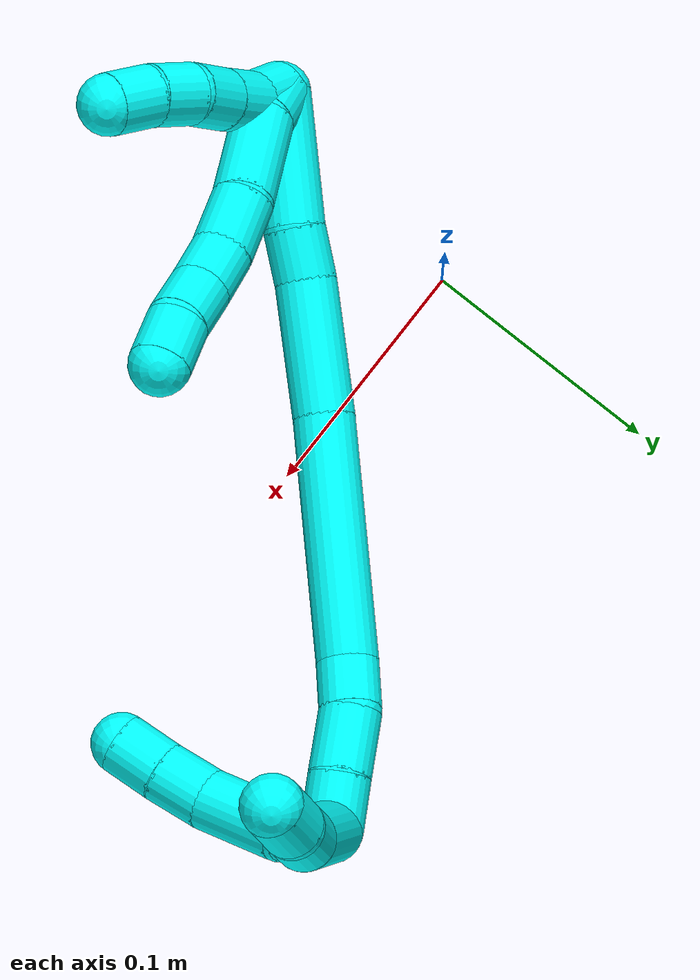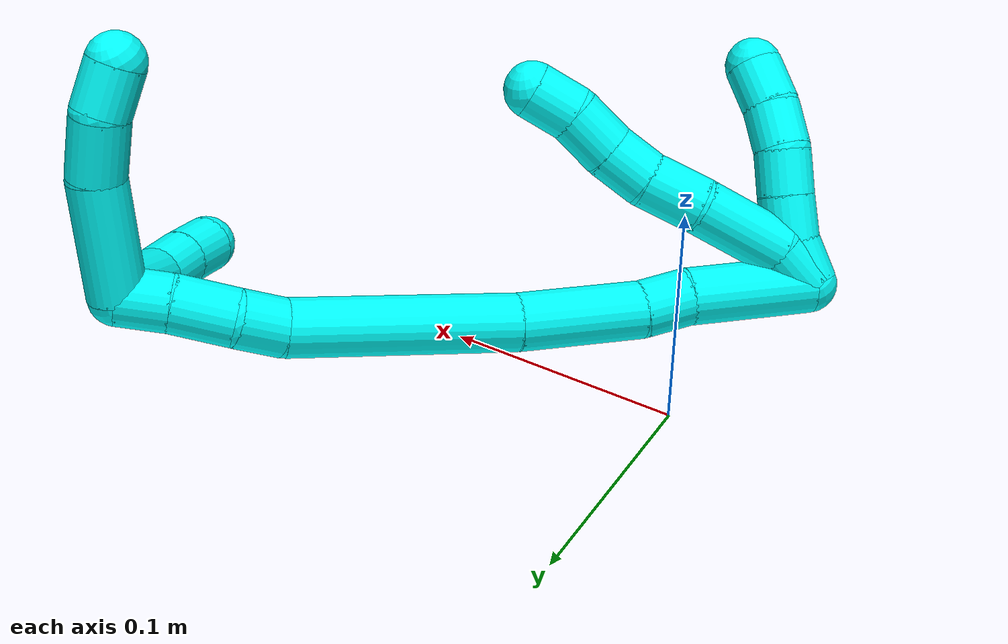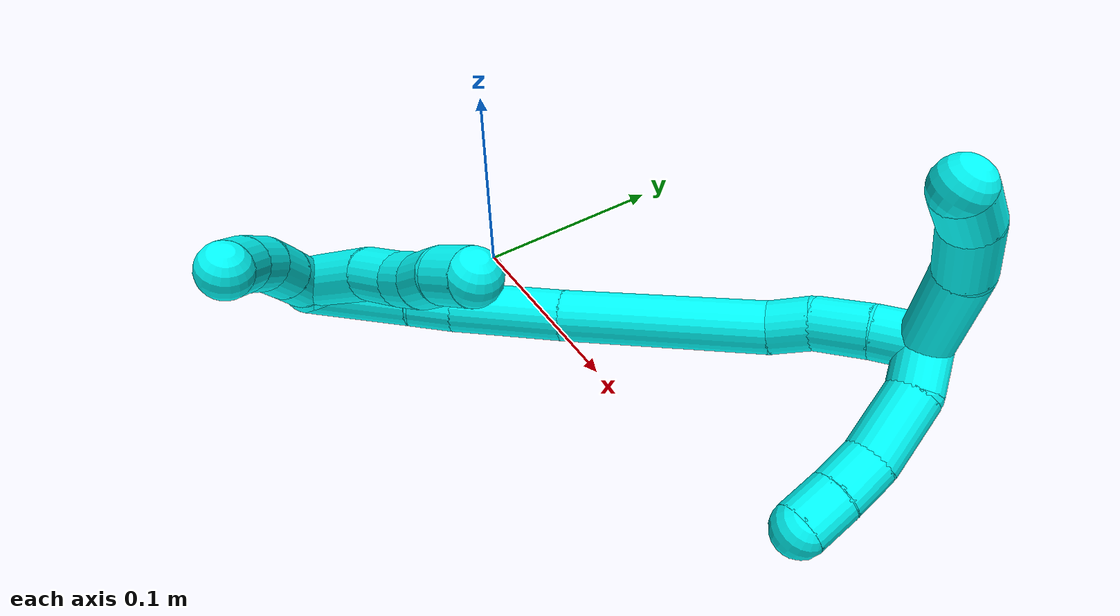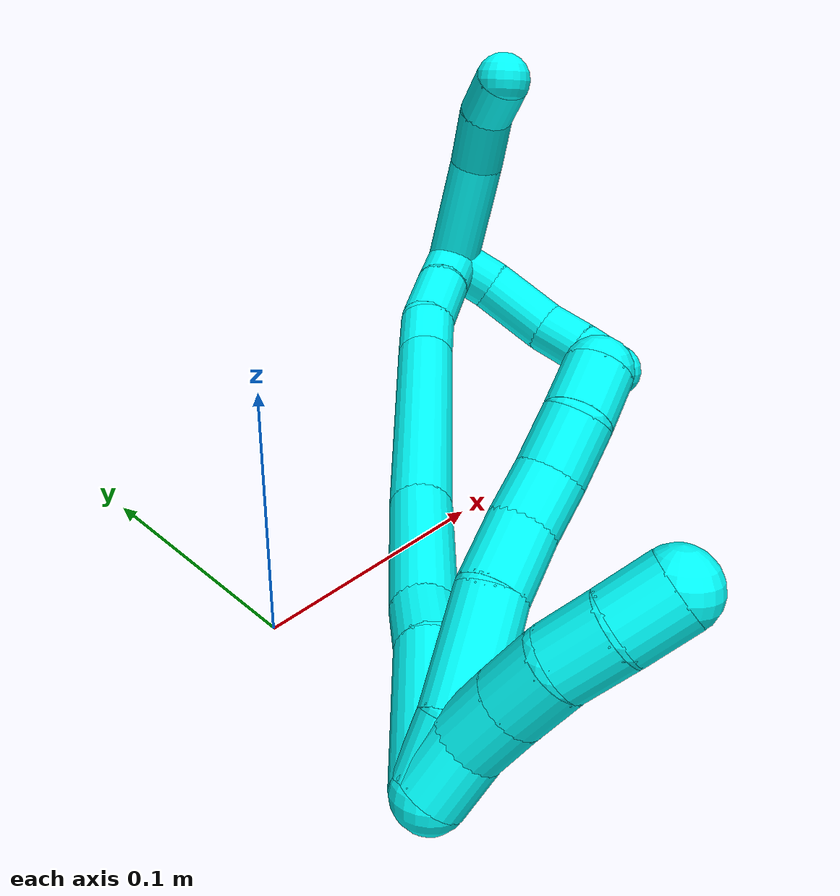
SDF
<sdf version="1.7">
 <world name="default">
  <model name="3">
   <static>0</static>
   <link name="3">
    <collision name="collision-cylinder-e_1_2_8">
     <pose>0.00506 0.000925 0.009393 -0.098132 0.492103 -0.024663</pose>
     <geometry><cylinder><radius>0.0125</radius><length>0.021418</length></cylinder></geometry>
     <surface>
      <friction><ode><mu>1.16</mu><mu2>1.16</mu2><slip1>0</slip1><slip2>0</slip2></ode></friction>
      <contact><ode><kp>1e+06</kp><kd>1</kd><max_vel>0</max_vel><min_depth>0.001</min_depth></ode></contact>
     </surface>
    </collision>
    <visual name="visual-cylinder-e_1_2_8">
     <pose>0.00506 0.000925 0.009393 -0.098132 0.492103 -0.024663</pose>
     <geometry><cylinder><radius>0.0125</radius><length>0.021418</length></cylinder></geometry>
     <material><ambient>0.003922 1 0.996078 1</ambient></material>
    </visual>
    <collision name="collision-cylinder-e_2_8_9">
     <pose>0.021676 0.009485 0.033719 -0.472643 0.603338 -0.149591</pose>
     <geometry><cylinder><radius>0.0125</radius><length>0.040737</length></cylinder></geometry>
     <surface>
      <friction><ode><mu>1.16</mu><mu2>1.16</mu2><slip1>0</slip1><slip2>0</slip2></ode></friction>
      <contact><ode><kp>1e+06</kp><kd>1</kd><max_vel>0</max_vel><min_depth>0.001</min_depth></ode></contact>
     </surface>
    </collision>
    <visual name="visual-cylinder-e_2_8_9">
     <pose>0.021676 0.009485 0.033719 -0.472643 0.603338 -0.149591</pose>
     <geometry><cylinder><radius>0.0125</radius><length>0.040737</length></cylinder></geometry>
     <material><ambient>0.003922 1 0.996078 1</ambient></material>
    </visual>
    <collision name="collision-cylinder-e_3_9_10">
     <pose>0.042158 0.021213 0.056649 -0.473062 0.782104 -0.198107</pose>
     <geometry><cylinder><radius>0.0125</radius><length>0.025325</length></cylinder></geometry>
     <surface>
      <friction><ode><mu>1.16</mu><mu2>1.16</mu2><slip1>0</slip1><slip2>0</slip2></ode></friction>
      <contact><ode><kp>1e+06</kp><kd>1</kd><max_vel>0</max_vel><min_depth>0.001</min_depth></ode></contact>
     </surface>
    </collision>
    <visual name="visual-cylinder-e_3_9_10">
     <pose>0.042158 0.021213 0.056649 -0.473062 0.782104 -0.198107</pose>
     <geometry><cylinder><radius>0.0125</radius><length>0.025325</length></cylinder></geometry>
     <material><ambient>0.003922 1 0.996078 1</ambient></material>
    </visual>
    <collision name="collision-cylinder-e_4_10_11">
     <pose>0.057888 0.026961 0.072086 -0.21885 0.728966 -0.083784</pose>
     <geometry><cylinder><radius>0.0125</radius><length>0.020437</length></cylinder></geometry>
     <surface>
      <friction><ode><mu>1.16</mu><mu2>1.16</mu2><slip1>0</slip1><slip2>0</slip2></ode></friction>
      <contact><ode><kp>1e+06</kp><kd>1</kd><max_vel>0</max_vel><min_depth>0.001</min_depth></ode></contact>
     </surface>
    </collision>
    <visual name="visual-cylinder-e_4_10_11">
     <pose>0.057888 0.026961 0.072086 -0.21885 0.728966 -0.083784</pose>
     <geometry><cylinder><radius>0.0125</radius><length>0.020437</length></cylinder></geometry>
     <material><ambient>0.003922 1 0.996078 1</ambient></material>
    </visual>
    <collision name="collision-cylinder-e_5_11_12">
     <pose>0.070811 0.029592 0.088516 -0.108248 0.594669 -0.033198</pose>
     <geometry><cylinder><radius>0.0125</radius><length>0.021835</length></cylinder></geometry>
     <surface>
      <friction><ode><mu>1.16</mu><mu2>1.16</mu2><slip1>0</slip1><slip2>0</slip2></ode></friction>
      <contact><ode><kp>1e+06</kp><kd>1</kd><max_vel>0</max_vel><min_depth>0.001</min_depth></ode></contact>
     </surface>
    </collision>
    <visual name="visual-cylinder-e_5_11_12">
     <pose>0.070811 0.029592 0.088516 -0.108248 0.594669 -0.033198</pose>
     <geometry><cylinder><radius>0.0125</radius><length>0.021835</length></cylinder></geometry>
     <material><ambient>0.003922 1 0.996078 1</ambient></material>
    </visual>
    <collision name="collision-cylinder-e_6_12_6">
     <pose>0.083645 0.033446 0.104513 -0.389555 0.72552 -0.149478</pose>
     <geometry><cylinder><radius>0.0125</radius><length>0.020248</length></cylinder></geometry>
     <surface>
      <friction><ode><mu>1.16</mu><mu2>1.16</mu2><slip1>0</slip1><slip2>0</slip2></ode></friction>
      <contact><ode><kp>1e+06</kp><kd>1</kd><max_vel>0</max_vel><min_depth>0.001</min_depth></ode></contact>
     </surface>
    </collision>
    <visual name="visual-cylinder-e_6_12_6">
     <pose>0.083645 0.033446 0.104513 -0.389555 0.72552 -0.149478</pose>
     <geometry><cylinder><radius>0.0125</radius><length>0.020248</length></cylinder></geometry>
     <material><ambient>0.003922 1 0.996078 1</ambient></material>
    </visual>
    <collision name="collision-cylinder-e_1_2_13">
     <pose>0.004425 -0.0029 0.008486 0.329297 0.458386 0.077486</pose>
     <geometry><cylinder><radius>0.0125</radius><length>0.02</length></cylinder></geometry>
     <surface>
      <friction><ode><mu>1.16</mu><mu2>1.16</mu2><slip1>0</slip1><slip2>0</slip2></ode></friction>
      <contact><ode><kp>1e+06</kp><kd>1</kd><max_vel>0</max_vel><min_depth>0.001</min_depth></ode></contact>
     </surface>
    </collision>
    <visual name="visual-cylinder-e_1_2_13">
     <pose>0.004425 -0.0029 0.008486 0.329297 0.458386 0.077486</pose>
     <geometry><cylinder><radius>0.0125</radius><length>0.02</length></cylinder></geometry>
     <material><ambient>0.003922 1 0.996078 1</ambient></material>
    </visual>
    <collision name="collision-cylinder-e_2_13_14">
     <pose>0.011896 -0.011114 0.024876 0.591902 0.309537 0.095069</pose>
     <geometry><cylinder><radius>0.0125</radius><length>0.02</length></cylinder></geometry>
     <surface>
      <friction><ode><mu>1.16</mu><mu2>1.16</mu2><slip1>0</slip1><slip2>0</slip2></ode></friction>
      <contact><ode><kp>1e+06</kp><kd>1</kd><max_vel>0</max_vel><min_depth>0.001</min_depth></ode></contact>
     </surface>
    </collision>
    <visual name="visual-cylinder-e_2_13_14">
     <pose>0.011896 -0.011114 0.024876 0.591902 0.309537 0.095069</pose>
     <geometry><cylinder><radius>0.0125</radius><length>0.02</length></cylinder></geometry>
     <material><ambient>0.003922 1 0.996078 1</ambient></material>
    </visual>
    <collision name="collision-cylinder-e_3_14_15">
     <pose>0.017839 -0.022065 0.040516 0.629705 0.293885 0.096335</pose>
     <geometry><cylinder><radius>0.0125</radius><length>0.02</length></cylinder></geometry>
     <surface>
      <friction><ode><mu>1.16</mu><mu2>1.16</mu2><slip1>0</slip1><slip2>0</slip2></ode></friction>
      <contact><ode><kp>1e+06</kp><kd>1</kd><max_vel>0</max_vel><min_depth>0.001</min_depth></ode></contact>
     </surface>
    </collision>
    <visual name="visual-cylinder-e_3_14_15">
     <pose>0.017839 -0.022065 0.040516 0.629705 0.293885 0.096335</pose>
     <geometry><cylinder><radius>0.0125</radius><length>0.02</length></cylinder></geometry>
     <material><ambient>0.003922 1 0.996078 1</ambient></material>
    </visual>
    <collision name="collision-cylinder-e_4_15_16">
     <pose>0.025883 -0.03322 0.054813 0.699301 0.540625 0.201392</pose>
     <geometry><cylinder><radius>0.0125</radius><length>0.02</length></cylinder></geometry>
     <surface>
      <friction><ode><mu>1.16</mu><mu2>1.16</mu2><slip1>0</slip1><slip2>0</slip2></ode></friction>
      <contact><ode><kp>1e+06</kp><kd>1</kd><max_vel>0</max_vel><min_depth>0.001</min_depth></ode></contact>
     </surface>
    </collision>
    <visual name="visual-cylinder-e_4_15_16">
     <pose>0.025883 -0.03322 0.054813 0.699301 0.540625 0.201392</pose>
     <geometry><cylinder><radius>0.0125</radius><length>0.02</length></cylinder></geometry>
     <material><ambient>0.003922 1 0.996078 1</ambient></material>
    </visual>
    <collision name="collision-cylinder-e_5_16_5">
     <pose>0.037343 -0.043334 0.067622 0.634151 0.683277 0.232316</pose>
     <geometry><cylinder><radius>0.0125</radius><length>0.02</length></cylinder></geometry>
     <surface>
      <friction><ode><mu>1.16</mu><mu2>1.16</mu2><slip1>0</slip1><slip2>0</slip2></ode></friction>
      <contact><ode><kp>1e+06</kp><kd>1</kd><max_vel>0</max_vel><min_depth>0.001</min_depth></ode></contact>
     </surface>
    </collision>
    <visual name="visual-cylinder-e_5_16_5">
     <pose>0.037343 -0.043334 0.067622 0.634151 0.683277 0.232316</pose>
     <geometry><cylinder><radius>0.0125</radius><length>0.02</length></cylinder></geometry>
     <material><ambient>0.003922 1 0.996078 1</ambient></material>
    </visual>
    <collision name="collision-cylinder-e_1_2_17">
     <pose>0.014859 0.021443 0.009469 -1.15499 0.564982 -0.373837</pose>
     <geometry><cylinder><radius>0.0125</radius><length>0.055508</length></cylinder></geometry>
     <surface>
      <friction><ode><mu>1.16</mu><mu2>1.16</mu2><slip1>0</slip1><slip2>0</slip2></ode></friction>
      <contact><ode><kp>1e+06</kp><kd>1</kd><max_vel>0</max_vel><min_depth>0.001</min_depth></ode></contact>
     </surface>
    </collision>
    <visual name="visual-cylinder-e_1_2_17">
     <pose>0.014859 0.021443 0.009469 -1.15499 0.564982 -0.373837</pose>
     <geometry><cylinder><radius>0.0125</radius><length>0.055508</length></cylinder></geometry>
     <material><ambient>0.003922 1 0.996078 1</ambient></material>
    </visual>
    <collision name="collision-cylinder-e_2_17_18">
     <pose>0.034812 0.052136 0.021345 -1.31608 0.489641 -0.381529</pose>
     <geometry><cylinder><radius>0.0125</radius><length>0.02166</length></cylinder></geometry>
     <surface>
      <friction><ode><mu>1.16</mu><mu2>1.16</mu2><slip1>0</slip1><slip2>0</slip2></ode></friction>
      <contact><ode><kp>1e+06</kp><kd>1</kd><max_vel>0</max_vel><min_depth>0.001</min_depth></ode></contact>
     </surface>
    </collision>
    <visual name="visual-cylinder-e_2_17_18">
     <pose>0.034812 0.052136 0.021345 -1.31608 0.489641 -0.381529</pose>
     <geometry><cylinder><radius>0.0125</radius><length>0.02166</length></cylinder></geometry>
     <material><ambient>0.003922 1 0.996078 1</ambient></material>
    </visual>
    <collision name="collision-cylinder-e_3_18_19">
     <pose>0.053851 0.082845 0.033786 -1.13346 0.532066 -0.343394</pose>
     <geometry><cylinder><radius>0.0125</radius><length>0.054978</length></cylinder></geometry>
     <surface>
      <friction><ode><mu>1.16</mu><mu2>1.16</mu2><slip1>0</slip1><slip2>0</slip2></ode></friction>
      <contact><ode><kp>1e+06</kp><kd>1</kd><max_vel>0</max_vel><min_depth>0.001</min_depth></ode></contact>
     </surface>
    </collision>
    <visual name="visual-cylinder-e_3_18_19">
     <pose>0.053851 0.082845 0.033786 -1.13346 0.532066 -0.343394</pose>
     <geometry><cylinder><radius>0.0125</radius><length>0.054978</length></cylinder></geometry>
     <material><ambient>0.003922 1 0.996078 1</ambient></material>
    </visual>
    <collision name="collision-cylinder-e_4_19_20">
     <pose>0.093527 0.140827 0.064945 -1.04639 0.5476 -0.321208</pose>
     <geometry><cylinder><radius>0.0125</radius><length>0.098838</length></cylinder></geometry>
     <surface>
      <friction><ode><mu>1.16</mu><mu2>1.16</mu2><slip1>0</slip1><slip2>0</slip2></ode></friction>
      <contact><ode><kp>1e+06</kp><kd>1</kd><max_vel>0</max_vel><min_depth>0.001</min_depth></ode></contact>
     </surface>
    </collision>
    <visual name="visual-cylinder-e_4_19_20">
     <pose>0.093527 0.140827 0.064945 -1.04639 0.5476 -0.321208</pose>
     <geometry><cylinder><radius>0.0125</radius><length>0.098838</length></cylinder></geometry>
     <material><ambient>0.003922 1 0.996078 1</ambient></material>
    </visual>
    <collision name="collision-cylinder-e_5_20_21">
     <pose>0.124008 0.183689 0.092658 -0.766166 0.47938 -0.19634</pose>
     <geometry><cylinder><radius>0.0125</radius><length>0.020605</length></cylinder></geometry>
     <surface>
      <friction><ode><mu>1.16</mu><mu2>1.16</mu2><slip1>0</slip1><slip2>0</slip2></ode></friction>
      <contact><ode><kp>1e+06</kp><kd>1</kd><max_vel>0</max_vel><min_depth>0.001</min_depth></ode></contact>
     </surface>
    </collision>
    <visual name="visual-cylinder-e_5_20_21">
     <pose>0.124008 0.183689 0.092658 -0.766166 0.47938 -0.19634</pose>
     <geometry><cylinder><radius>0.0125</radius><length>0.020605</length></cylinder></geometry>
     <material><ambient>0.003922 1 0.996078 1</ambient></material>
    </visual>
    <collision name="collision-cylinder-e_6_21_22">
     <pose>0.137621 0.197005 0.106242 -0.784047 0.730969 -0.313814</pose>
     <geometry><cylinder><radius>0.0125</radius><length>0.026547</length></cylinder></geometry>
     <surface>
      <friction><ode><mu>1.16</mu><mu2>1.16</mu2><slip1>0</slip1><slip2>0</slip2></ode></friction>
      <contact><ode><kp>1e+06</kp><kd>1</kd><max_vel>0</max_vel><min_depth>0.001</min_depth></ode></contact>
     </surface>
    </collision>
    <visual name="visual-cylinder-e_6_21_22">
     <pose>0.137621 0.197005 0.106242 -0.784047 0.730969 -0.313814</pose>
     <geometry><cylinder><radius>0.0125</radius><length>0.026547</length></cylinder></geometry>
     <material><ambient>0.003922 1 0.996078 1</ambient></material>
    </visual>
    <collision name="collision-cylinder-e_7_22_1">
     <pose>0.154058 0.210229 0.118048 -0.914708 0.765632 -0.391295</pose>
     <geometry><cylinder><radius>0.0125</radius><length>0.021864</length></cylinder></geometry>
     <surface>
      <friction><ode><mu>1.16</mu><mu2>1.16</mu2><slip1>0</slip1><slip2>0</slip2></ode></friction>
      <contact><ode><kp>1e+06</kp><kd>1</kd><max_vel>0</max_vel><min_depth>0.001</min_depth></ode></contact>
     </surface>
    </collision>
    <visual name="visual-cylinder-e_7_22_1">
     <pose>0.154058 0.210229 0.118048 -0.914708 0.765632 -0.391295</pose>
     <geometry><cylinder><radius>0.0125</radius><length>0.021864</length></cylinder></geometry>
     <material><ambient>0.003922 1 0.996078 1</ambient></material>
    </visual>
    <collision name="collision-cylinder-e_1_1_23">
     <pose>0.170114 0.211148 0.117264 2.38051 0.832198 1.67016</pose>
     <geometry><cylinder><radius>0.0125</radius><length>0.022938</length></cylinder></geometry>
     <surface>
      <friction><ode><mu>1.16</mu><mu2>1.16</mu2><slip1>0</slip1><slip2>0</slip2></ode></friction>
      <contact><ode><kp>1e+06</kp><kd>1</kd><max_vel>0</max_vel><min_depth>0.001</min_depth></ode></contact>
     </surface>
    </collision>
    <visual name="visual-cylinder-e_1_1_23">
     <pose>0.170114 0.211148 0.117264 2.38051 0.832198 1.67016</pose>
     <geometry><cylinder><radius>0.0125</radius><length>0.022938</length></cylinder></geometry>
     <material><ambient>0.003922 1 0.996078 1</ambient></material>
    </visual>
    <collision name="collision-cylinder-e_2_23_24">
     <pose>0.187118 0.193756 0.102442 2.22382 0.511256 0.973116</pose>
     <geometry><cylinder><radius>0.0125</radius><length>0.034842</length></cylinder></geometry>
     <surface>
      <friction><ode><mu>1.16</mu><mu2>1.16</mu2><slip1>0</slip1><slip2>0</slip2></ode></friction>
      <contact><ode><kp>1e+06</kp><kd>1</kd><max_vel>0</max_vel><min_depth>0.001</min_depth></ode></contact>
     </surface>
    </collision>
    <visual name="visual-cylinder-e_2_23_24">
     <pose>0.187118 0.193756 0.102442 2.22382 0.511256 0.973116</pose>
     <geometry><cylinder><radius>0.0125</radius><length>0.034842</length></cylinder></geometry>
     <material><ambient>0.003922 1 0.996078 1</ambient></material>
    </visual>
    <collision name="collision-cylinder-e_3_24_25">
     <pose>0.199509 0.172359 0.089317 1.96618 0.365365 0.54099</pose>
     <geometry><cylinder><radius>0.0125</radius><length>0.021647</length></cylinder></geometry>
     <surface>
      <friction><ode><mu>1.16</mu><mu2>1.16</mu2><slip1>0</slip1><slip2>0</slip2></ode></friction>
      <contact><ode><kp>1e+06</kp><kd>1</kd><max_vel>0</max_vel><min_depth>0.001</min_depth></ode></contact>
     </surface>
    </collision>
    <visual name="visual-cylinder-e_3_24_25">
     <pose>0.199509 0.172359 0.089317 1.96618 0.365365 0.54099</pose>
     <geometry><cylinder><radius>0.0125</radius><length>0.021647</length></cylinder></geometry>
     <material><ambient>0.003922 1 0.996078 1</ambient></material>
    </visual>
    <collision name="collision-cylinder-e_4_25_4">
     <pose>0.206566 0.154126 0.081378 1.99726 0.315319 0.484024</pose>
     <geometry><cylinder><radius>0.0125</radius><length>0.020573</length></cylinder></geometry>
     <surface>
      <friction><ode><mu>1.16</mu><mu2>1.16</mu2><slip1>0</slip1><slip2>0</slip2></ode></friction>
      <contact><ode><kp>1e+06</kp><kd>1</kd><max_vel>0</max_vel><min_depth>0.001</min_depth></ode></contact>
     </surface>
    </collision>
    <visual name="visual-cylinder-e_4_25_4">
     <pose>0.206566 0.154126 0.081378 1.99726 0.315319 0.484024</pose>
     <geometry><cylinder><radius>0.0125</radius><length>0.020573</length></cylinder></geometry>
     <material><ambient>0.003922 1 0.996078 1</ambient></material>
    </visual>
    <collision name="collision-cylinder-e_1_1_26">
     <pose>0.161235 0.208627 0.147653 0.306474 -0.015317 -0.002366</pose>
     <geometry><cylinder><radius>0.0125</radius><length>0.052026</length></cylinder></geometry>
     <surface>
      <friction><ode><mu>1.16</mu><mu2>1.16</mu2><slip1>0</slip1><slip2>0</slip2></ode></friction>
      <contact><ode><kp>1e+06</kp><kd>1</kd><max_vel>0</max_vel><min_depth>0.001</min_depth></ode></contact>
     </surface>
    </collision>
    <visual name="visual-cylinder-e_1_1_26">
     <pose>0.161235 0.208627 0.147653 0.306474 -0.015317 -0.002366</pose>
     <geometry><cylinder><radius>0.0125</radius><length>0.052026</length></cylinder></geometry>
     <material><ambient>0.003922 1 0.996078 1</ambient></material>
    </visual>
    <collision name="collision-cylinder-e_2_26_27">
     <pose>0.158378 0.194945 0.184315 0.457097 -0.183895 -0.042891</pose>
     <geometry><cylinder><radius>0.0125</radius><length>0.026895</length></cylinder></geometry>
     <surface>
      <friction><ode><mu>1.16</mu><mu2>1.16</mu2><slip1>0</slip1><slip2>0</slip2></ode></friction>
      <contact><ode><kp>1e+06</kp><kd>1</kd><max_vel>0</max_vel><min_depth>0.001</min_depth></ode></contact>
     </surface>
    </collision>
    <visual name="visual-cylinder-e_2_26_27">
     <pose>0.158378 0.194945 0.184315 0.457097 -0.183895 -0.042891</pose>
     <geometry><cylinder><radius>0.0125</radius><length>0.026895</length></cylinder></geometry>
     <material><ambient>0.003922 1 0.996078 1</ambient></material>
    </visual>
    <collision name="collision-cylinder-e_3_27_3">
     <pose>0.15437 0.181895 0.203704 0.764311 -0.147477 -0.059363</pose>
     <geometry><cylinder><radius>0.0125</radius><length>0.021079</length></cylinder></geometry>
     <surface>
      <friction><ode><mu>1.16</mu><mu2>1.16</mu2><slip1>0</slip1><slip2>0</slip2></ode></friction>
      <contact><ode><kp>1e+06</kp><kd>1</kd><max_vel>0</max_vel><min_depth>0.001</min_depth></ode></contact>
     </surface>
    </collision>
    <visual name="visual-cylinder-e_3_27_3">
     <pose>0.15437 0.181895 0.203704 0.764311 -0.147477 -0.059363</pose>
     <geometry><cylinder><radius>0.0125</radius><length>0.021079</length></cylinder></geometry>
     <material><ambient>0.003922 1 0.996078 1</ambient></material>
    </visual>
    <collision name="collision-sphere-3">
     <pose>0.152822 0.174681 0.211229 0 -0 0</pose>
     <geometry><sphere><radius>0.0125</radius></sphere></geometry>
     <surface>
      <friction><ode><mu>1.16</mu><mu2>1.16</mu2><slip1>0</slip1><slip2>0</slip2></ode></friction>
      <contact><ode><kp>1e+06</kp><kd>1</kd><max_vel>0</max_vel><min_depth>0.001</min_depth></ode></contact>
     </surface>
    </collision>
    <visual name="visual-sphere-3">
     <pose>0.152822 0.174681 0.211229 0 -0 0</pose>
     <geometry><sphere><radius>0.0125</radius></sphere></geometry>
     <material><ambient>0.003922 1 0.996078 1</ambient></material>
    </visual>
    <collision name="collision-sphere-27">
     <pose>0.155919 0.18911 0.196178 0 -0 0</pose>
     <geometry><sphere><radius>0.0125</radius></sphere></geometry>
     <surface>
      <friction><ode><mu>1.16</mu><mu2>1.16</mu2><slip1>0</slip1><slip2>0</slip2></ode></friction>
      <contact><ode><kp>1e+06</kp><kd>1</kd><max_vel>0</max_vel><min_depth>0.001</min_depth></ode></contact>
     </surface>
    </collision>
    <visual name="visual-sphere-27">
     <pose>0.155919 0.18911 0.196178 0 -0 0</pose>
     <geometry><sphere><radius>0.0125</radius></sphere></geometry>
     <material><ambient>0.003922 1 0.996078 1</ambient></material>
    </visual>
    <collision name="collision-sphere-26">
     <pose>0.160837 0.20078 0.172451 0 -0 0</pose>
     <geometry><sphere><radius>0.0125</radius></sphere></geometry>
     <surface>
      <friction><ode><mu>1.16</mu><mu2>1.16</mu2><slip1>0</slip1><slip2>0</slip2></ode></friction>
      <contact><ode><kp>1e+06</kp><kd>1</kd><max_vel>0</max_vel><min_depth>0.001</min_depth></ode></contact>
     </surface>
    </collision>
    <visual name="visual-sphere-26">
     <pose>0.160837 0.20078 0.172451 0 -0 0</pose>
     <geometry><sphere><radius>0.0125</radius></sphere></geometry>
     <material><ambient>0.003922 1 0.996078 1</ambient></material>
    </visual>
    <collision name="collision-sphere-4">
     <pose>0.209756 0.145223 0.077333 0 -0 0</pose>
     <geometry><sphere><radius>0.0125</radius></sphere></geometry>
     <surface>
      <friction><ode><mu>1.16</mu><mu2>1.16</mu2><slip1>0</slip1><slip2>0</slip2></ode></friction>
      <contact><ode><kp>1e+06</kp><kd>1</kd><max_vel>0</max_vel><min_depth>0.001</min_depth></ode></contact>
     </surface>
    </collision>
    <visual name="visual-sphere-4">
     <pose>0.209756 0.145223 0.077333 0 -0 0</pose>
     <geometry><sphere><radius>0.0125</radius></sphere></geometry>
     <material><ambient>0.003922 1 0.996078 1</ambient></material>
    </visual>
    <collision name="collision-sphere-25">
     <pose>0.203376 0.16303 0.085423 0 -0 0</pose>
     <geometry><sphere><radius>0.0125</radius></sphere></geometry>
     <surface>
      <friction><ode><mu>1.16</mu><mu2>1.16</mu2><slip1>0</slip1><slip2>0</slip2></ode></friction>
      <contact><ode><kp>1e+06</kp><kd>1</kd><max_vel>0</max_vel><min_depth>0.001</min_depth></ode></contact>
     </surface>
    </collision>
    <visual name="visual-sphere-25">
     <pose>0.203376 0.16303 0.085423 0 -0 0</pose>
     <geometry><sphere><radius>0.0125</radius></sphere></geometry>
     <material><ambient>0.003922 1 0.996078 1</ambient></material>
    </visual>
    <collision name="collision-sphere-24">
     <pose>0.195642 0.181688 0.093211 0 -0 0</pose>
     <geometry><sphere><radius>0.0125</radius></sphere></geometry>
     <surface>
      <friction><ode><mu>1.16</mu><mu2>1.16</mu2><slip1>0</slip1><slip2>0</slip2></ode></friction>
      <contact><ode><kp>1e+06</kp><kd>1</kd><max_vel>0</max_vel><min_depth>0.001</min_depth></ode></contact>
     </surface>
    </collision>
    <visual name="visual-sphere-24">
     <pose>0.195642 0.181688 0.093211 0 -0 0</pose>
     <geometry><sphere><radius>0.0125</radius></sphere></geometry>
     <material><ambient>0.003922 1 0.996078 1</ambient></material>
    </visual>
    <collision name="collision-sphere-23">
     <pose>0.178594 0.205823 0.111673 0 -0 0</pose>
     <geometry><sphere><radius>0.0125</radius></sphere></geometry>
     <surface>
      <friction><ode><mu>1.16</mu><mu2>1.16</mu2><slip1>0</slip1><slip2>0</slip2></ode></friction>
      <contact><ode><kp>1e+06</kp><kd>1</kd><max_vel>0</max_vel><min_depth>0.001</min_depth></ode></contact>
     </surface>
    </collision>
    <visual name="visual-sphere-23">
     <pose>0.178594 0.205823 0.111673 0 -0 0</pose>
     <geometry><sphere><radius>0.0125</radius></sphere></geometry>
     <material><ambient>0.003922 1 0.996078 1</ambient></material>
    </visual>
    <collision name="collision-sphere-1">
     <pose>0.161634 0.216474 0.122855 0 -0 0</pose>
     <geometry><sphere><radius>0.0125</radius></sphere></geometry>
     <surface>
      <friction><ode><mu>1.16</mu><mu2>1.16</mu2><slip1>0</slip1><slip2>0</slip2></ode></friction>
      <contact><ode><kp>1e+06</kp><kd>1</kd><max_vel>0</max_vel><min_depth>0.001</min_depth></ode></contact>
     </surface>
    </collision>
    <visual name="visual-sphere-1">
     <pose>0.161634 0.216474 0.122855 0 -0 0</pose>
     <geometry><sphere><radius>0.0125</radius></sphere></geometry>
     <material><ambient>0.003922 1 0.996078 1</ambient></material>
    </visual>
    <collision name="collision-sphere-22">
     <pose>0.146482 0.203984 0.11324 0 -0 0</pose>
     <geometry><sphere><radius>0.0125</radius></sphere></geometry>
     <surface>
      <friction><ode><mu>1.16</mu><mu2>1.16</mu2><slip1>0</slip1><slip2>0</slip2></ode></friction>
      <contact><ode><kp>1e+06</kp><kd>1</kd><max_vel>0</max_vel><min_depth>0.001</min_depth></ode></contact>
     </surface>
    </collision>
    <visual name="visual-sphere-22">
     <pose>0.146482 0.203984 0.11324 0 -0 0</pose>
     <geometry><sphere><radius>0.0125</radius></sphere></geometry>
     <material><ambient>0.003922 1 0.996078 1</ambient></material>
    </visual>
    <collision name="collision-sphere-21">
     <pose>0.12876 0.190027 0.099245 0 -0 0</pose>
     <geometry><sphere><radius>0.0125</radius></sphere></geometry>
     <surface>
      <friction><ode><mu>1.16</mu><mu2>1.16</mu2><slip1>0</slip1><slip2>0</slip2></ode></friction>
      <contact><ode><kp>1e+06</kp><kd>1</kd><max_vel>0</max_vel><min_depth>0.001</min_depth></ode></contact>
     </surface>
    </collision>
    <visual name="visual-sphere-21">
     <pose>0.12876 0.190027 0.099245 0 -0 0</pose>
     <geometry><sphere><radius>0.0125</radius></sphere></geometry>
     <material><ambient>0.003922 1 0.996078 1</ambient></material>
    </visual>
    <collision name="collision-sphere-12">
     <pose>0.076928 0.030569 0.097506 0 -0 0</pose>
     <geometry><sphere><radius>0.0125</radius></sphere></geometry>
     <surface>
      <friction><ode><mu>1.16</mu><mu2>1.16</mu2><slip1>0</slip1><slip2>0</slip2></ode></friction>
      <contact><ode><kp>1e+06</kp><kd>1</kd><max_vel>0</max_vel><min_depth>0.001</min_depth></ode></contact>
     </surface>
    </collision>
    <visual name="visual-sphere-12">
     <pose>0.076928 0.030569 0.097506 0 -0 0</pose>
     <geometry><sphere><radius>0.0125</radius></sphere></geometry>
     <material><ambient>0.003922 1 0.996078 1</ambient></material>
    </visual>
    <collision name="collision-sphere-11">
     <pose>0.064695 0.028615 0.079526 0 -0 0</pose>
     <geometry><sphere><radius>0.0125</radius></sphere></geometry>
     <surface>
      <friction><ode><mu>1.16</mu><mu2>1.16</mu2><slip1>0</slip1><slip2>0</slip2></ode></friction>
      <contact><ode><kp>1e+06</kp><kd>1</kd><max_vel>0</max_vel><min_depth>0.001</min_depth></ode></contact>
     </surface>
    </collision>
    <visual name="visual-sphere-11">
     <pose>0.064695 0.028615 0.079526 0 -0 0</pose>
     <geometry><sphere><radius>0.0125</radius></sphere></geometry>
     <material><ambient>0.003922 1 0.996078 1</ambient></material>
    </visual>
    <collision name="collision-sphere-10">
     <pose>0.051082 0.025306 0.064646 0 -0 0</pose>
     <geometry><sphere><radius>0.0125</radius></sphere></geometry>
     <surface>
      <friction><ode><mu>1.16</mu><mu2>1.16</mu2><slip1>0</slip1><slip2>0</slip2></ode></friction>
      <contact><ode><kp>1e+06</kp><kd>1</kd><max_vel>0</max_vel><min_depth>0.001</min_depth></ode></contact>
     </surface>
    </collision>
    <visual name="visual-sphere-10">
     <pose>0.051082 0.025306 0.064646 0 -0 0</pose>
     <geometry><sphere><radius>0.0125</radius></sphere></geometry>
     <material><ambient>0.003922 1 0.996078 1</ambient></material>
    </visual>
    <collision name="collision-sphere-9">
     <pose>0.033233 0.01712 0.048653 0 -0 0</pose>
     <geometry><sphere><radius>0.0125</radius></sphere></geometry>
     <surface>
      <friction><ode><mu>1.16</mu><mu2>1.16</mu2><slip1>0</slip1><slip2>0</slip2></ode></friction>
      <contact><ode><kp>1e+06</kp><kd>1</kd><max_vel>0</max_vel><min_depth>0.001</min_depth></ode></contact>
     </surface>
    </collision>
    <visual name="visual-sphere-9">
     <pose>0.033233 0.01712 0.048653 0 -0 0</pose>
     <geometry><sphere><radius>0.0125</radius></sphere></geometry>
     <material><ambient>0.003922 1 0.996078 1</ambient></material>
    </visual>
    <collision name="collision-sphere-2">
     <geometry><sphere><radius>0.0125</radius></sphere></geometry>
     <surface>
      <friction><ode><mu>1.16</mu><mu2>1.16</mu2><slip1>0</slip1><slip2>0</slip2></ode></friction>
      <contact><ode><kp>1e+06</kp><kd>1</kd><max_vel>0</max_vel><min_depth>0.001</min_depth></ode></contact>
     </surface>
    </collision>
    <visual name="visual-sphere-2">
     <geometry><sphere><radius>0.0125</radius></sphere></geometry>
     <material><ambient>0.003922 1 0.996078 1</ambient></material>
    </visual>
    <collision name="collision-sphere-19">
     <pose>0.067797 0.104304 0.043819 0 -0 0</pose>
     <geometry><sphere><radius>0.0125</radius></sphere></geometry>
     <surface>
      <friction><ode><mu>1.16</mu><mu2>1.16</mu2><slip1>0</slip1><slip2>0</slip2></ode></friction>
      <contact><ode><kp>1e+06</kp><kd>1</kd><max_vel>0</max_vel><min_depth>0.001</min_depth></ode></contact>
     </surface>
    </collision>
    <visual name="visual-sphere-19">
     <pose>0.067797 0.104304 0.043819 0 -0 0</pose>
     <geometry><sphere><radius>0.0125</radius></sphere></geometry>
     <material><ambient>0.003922 1 0.996078 1</ambient></material>
    </visual>
    <collision name="collision-sphere-8">
     <pose>0.01012 0.001849 0.018786 0 -0 0</pose>
     <geometry><sphere><radius>0.0125</radius></sphere></geometry>
     <surface>
      <friction><ode><mu>1.16</mu><mu2>1.16</mu2><slip1>0</slip1><slip2>0</slip2></ode></friction>
      <contact><ode><kp>1e+06</kp><kd>1</kd><max_vel>0</max_vel><min_depth>0.001</min_depth></ode></contact>
     </surface>
    </collision>
    <visual name="visual-sphere-8">
     <pose>0.01012 0.001849 0.018786 0 -0 0</pose>
     <geometry><sphere><radius>0.0125</radius></sphere></geometry>
     <material><ambient>0.003922 1 0.996078 1</ambient></material>
    </visual>
    <collision name="collision-sphere-6">
     <pose>0.090363 0.036323 0.11152 0 -0 0</pose>
     <geometry><sphere><radius>0.0125</radius></sphere></geometry>
     <surface>
      <friction><ode><mu>1.16</mu><mu2>1.16</mu2><slip1>0</slip1><slip2>0</slip2></ode></friction>
      <contact><ode><kp>1e+06</kp><kd>1</kd><max_vel>0</max_vel><min_depth>0.001</min_depth></ode></contact>
     </surface>
    </collision>
    <visual name="visual-sphere-6">
     <pose>0.090363 0.036323 0.11152 0 -0 0</pose>
     <geometry><sphere><radius>0.0125</radius></sphere></geometry>
     <material><ambient>0.003922 1 0.996078 1</ambient></material>
    </visual>
    <collision name="collision-sphere-13">
     <pose>0.00885 -0.0058 0.016972 0 -0 0</pose>
     <geometry><sphere><radius>0.0125</radius></sphere></geometry>
     <surface>
      <friction><ode><mu>1.16</mu><mu2>1.16</mu2><slip1>0</slip1><slip2>0</slip2></ode></friction>
      <contact><ode><kp>1e+06</kp><kd>1</kd><max_vel>0</max_vel><min_depth>0.001</min_depth></ode></contact>
     </surface>
    </collision>
    <visual name="visual-sphere-13">
     <pose>0.00885 -0.0058 0.016972 0 -0 0</pose>
     <geometry><sphere><radius>0.0125</radius></sphere></geometry>
     <material><ambient>0.003922 1 0.996078 1</ambient></material>
    </visual>
    <collision name="collision-sphere-14">
     <pose>0.014942 -0.016428 0.03278 0 -0 0</pose>
     <geometry><sphere><radius>0.0125</radius></sphere></geometry>
     <surface>
      <friction><ode><mu>1.16</mu><mu2>1.16</mu2><slip1>0</slip1><slip2>0</slip2></ode></friction>
      <contact><ode><kp>1e+06</kp><kd>1</kd><max_vel>0</max_vel><min_depth>0.001</min_depth></ode></contact>
     </surface>
    </collision>
    <visual name="visual-sphere-14">
     <pose>0.014942 -0.016428 0.03278 0 -0 0</pose>
     <geometry><sphere><radius>0.0125</radius></sphere></geometry>
     <material><ambient>0.003922 1 0.996078 1</ambient></material>
    </visual>
    <collision name="collision-sphere-15">
     <pose>0.020736 -0.027702 0.048252 0 -0 0</pose>
     <geometry><sphere><radius>0.0125</radius></sphere></geometry>
     <surface>
      <friction><ode><mu>1.16</mu><mu2>1.16</mu2><slip1>0</slip1><slip2>0</slip2></ode></friction>
      <contact><ode><kp>1e+06</kp><kd>1</kd><max_vel>0</max_vel><min_depth>0.001</min_depth></ode></contact>
     </surface>
    </collision>
    <visual name="visual-sphere-15">
     <pose>0.020736 -0.027702 0.048252 0 -0 0</pose>
     <geometry><sphere><radius>0.0125</radius></sphere></geometry>
     <material><ambient>0.003922 1 0.996078 1</ambient></material>
    </visual>
    <collision name="collision-sphere-16">
     <pose>0.031029 -0.038739 0.061375 0 -0 0</pose>
     <geometry><sphere><radius>0.0125</radius></sphere></geometry>
     <surface>
      <friction><ode><mu>1.16</mu><mu2>1.16</mu2><slip1>0</slip1><slip2>0</slip2></ode></friction>
      <contact><ode><kp>1e+06</kp><kd>1</kd><max_vel>0</max_vel><min_depth>0.001</min_depth></ode></contact>
     </surface>
    </collision>
    <visual name="visual-sphere-16">
     <pose>0.031029 -0.038739 0.061375 0 -0 0</pose>
     <geometry><sphere><radius>0.0125</radius></sphere></geometry>
     <material><ambient>0.003922 1 0.996078 1</ambient></material>
    </visual>
    <collision name="collision-sphere-5">
     <pose>0.043656 -0.047929 0.073869 0 -0 0</pose>
     <geometry><sphere><radius>0.0125</radius></sphere></geometry>
     <surface>
      <friction><ode><mu>1.16</mu><mu2>1.16</mu2><slip1>0</slip1><slip2>0</slip2></ode></friction>
      <contact><ode><kp>1e+06</kp><kd>1</kd><max_vel>0</max_vel><min_depth>0.001</min_depth></ode></contact>
     </surface>
    </collision>
    <visual name="visual-sphere-5">
     <pose>0.043656 -0.047929 0.073869 0 -0 0</pose>
     <geometry><sphere><radius>0.0125</radius></sphere></geometry>
     <material><ambient>0.003922 1 0.996078 1</ambient></material>
    </visual>
    <collision name="collision-sphere-17">
     <pose>0.029719 0.042887 0.018937 0 -0 0</pose>
     <geometry><sphere><radius>0.0125</radius></sphere></geometry>
     <surface>
      <friction><ode><mu>1.16</mu><mu2>1.16</mu2><slip1>0</slip1><slip2>0</slip2></ode></friction>
      <contact><ode><kp>1e+06</kp><kd>1</kd><max_vel>0</max_vel><min_depth>0.001</min_depth></ode></contact>
     </surface>
    </collision>
    <visual name="visual-sphere-17">
     <pose>0.029719 0.042887 0.018937 0 -0 0</pose>
     <geometry><sphere><radius>0.0125</radius></sphere></geometry>
     <material><ambient>0.003922 1 0.996078 1</ambient></material>
    </visual>
    <collision name="collision-sphere-18">
     <pose>0.039906 0.061385 0.023753 0 -0 0</pose>
     <geometry><sphere><radius>0.0125</radius></sphere></geometry>
     <surface>
      <friction><ode><mu>1.16</mu><mu2>1.16</mu2><slip1>0</slip1><slip2>0</slip2></ode></friction>
      <contact><ode><kp>1e+06</kp><kd>1</kd><max_vel>0</max_vel><min_depth>0.001</min_depth></ode></contact>
     </surface>
    </collision>
    <visual name="visual-sphere-18">
     <pose>0.039906 0.061385 0.023753 0 -0 0</pose>
     <geometry><sphere><radius>0.0125</radius></sphere></geometry>
     <material><ambient>0.003922 1 0.996078 1</ambient></material>
    </visual>
    <collision name="collision-sphere-20">
     <pose>0.119256 0.17735 0.086071 0 -0 0</pose>
     <geometry><sphere><radius>0.0125</radius></sphere></geometry>
     <surface>
      <friction><ode><mu>1.16</mu><mu2>1.16</mu2><slip1>0</slip1><slip2>0</slip2></ode></friction>
      <contact><ode><kp>1e+06</kp><kd>1</kd><max_vel>0</max_vel><min_depth>0.001</min_depth></ode></contact>
     </surface>
    </collision>
    <visual name="visual-sphere-20">
     <pose>0.119256 0.17735 0.086071 0 -0 0</pose>
     <geometry><sphere><radius>0.0125</radius></sphere></geometry>
     <material><ambient>0.003922 1 0.996078 1</ambient></material>
    </visual>
    <inertial>
     <pose>0.088909 0.097863 0.074443 0 -0 0</pose>
     <mass>0.75</mass>
     <inertia>
      <ixx>0.000139</ixx>
      <ixy>0</ixy>
      <ixz>0</ixz>
      <iyy>9.2e-05</iyy>
      <iyz>0</iyz>
      <izz>-0.000134</izz>
     </inertia>
    </inertial>
   </link>
   <pose>-0.018295 -0.096653 0.012399 -0.230409 0.199522 -0.208513</pose>
  </model>
 </world>
</sdf>
